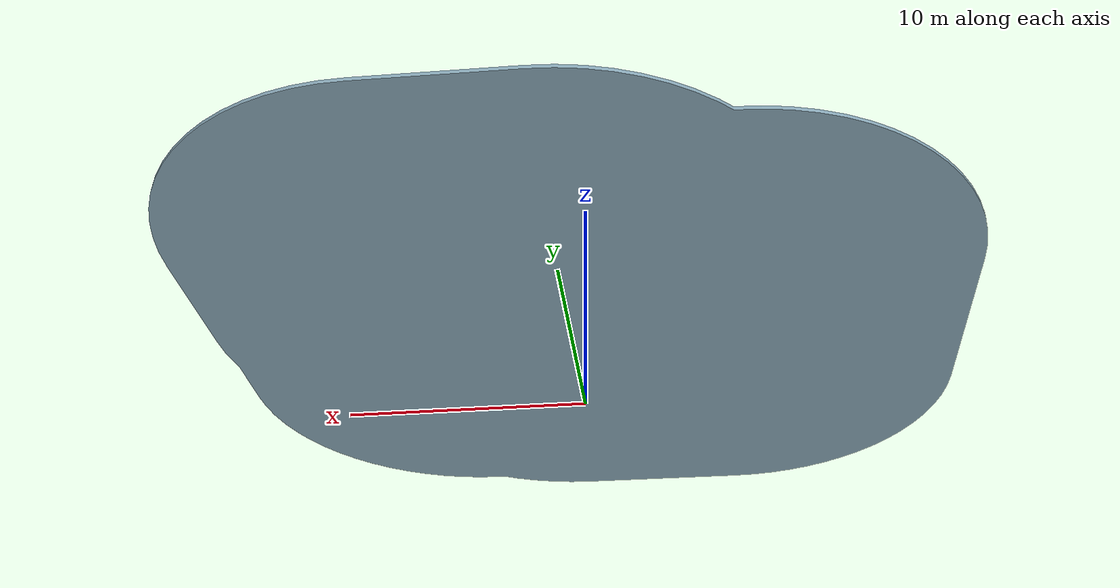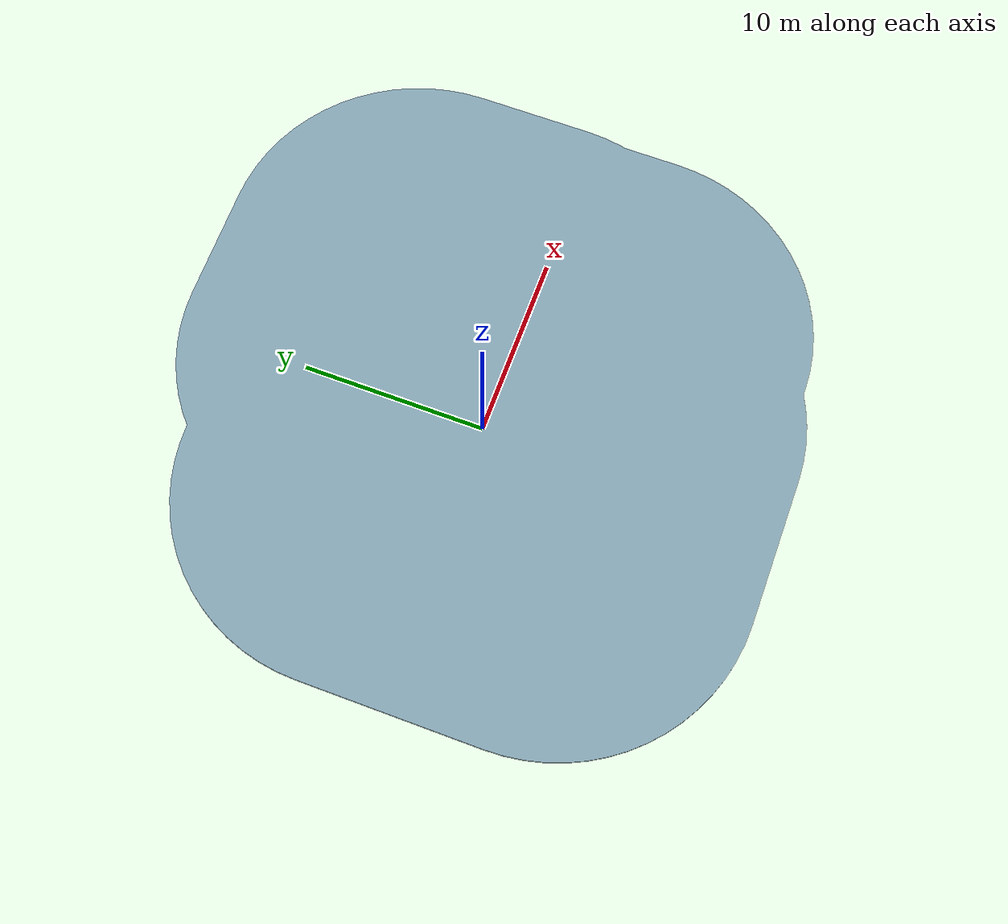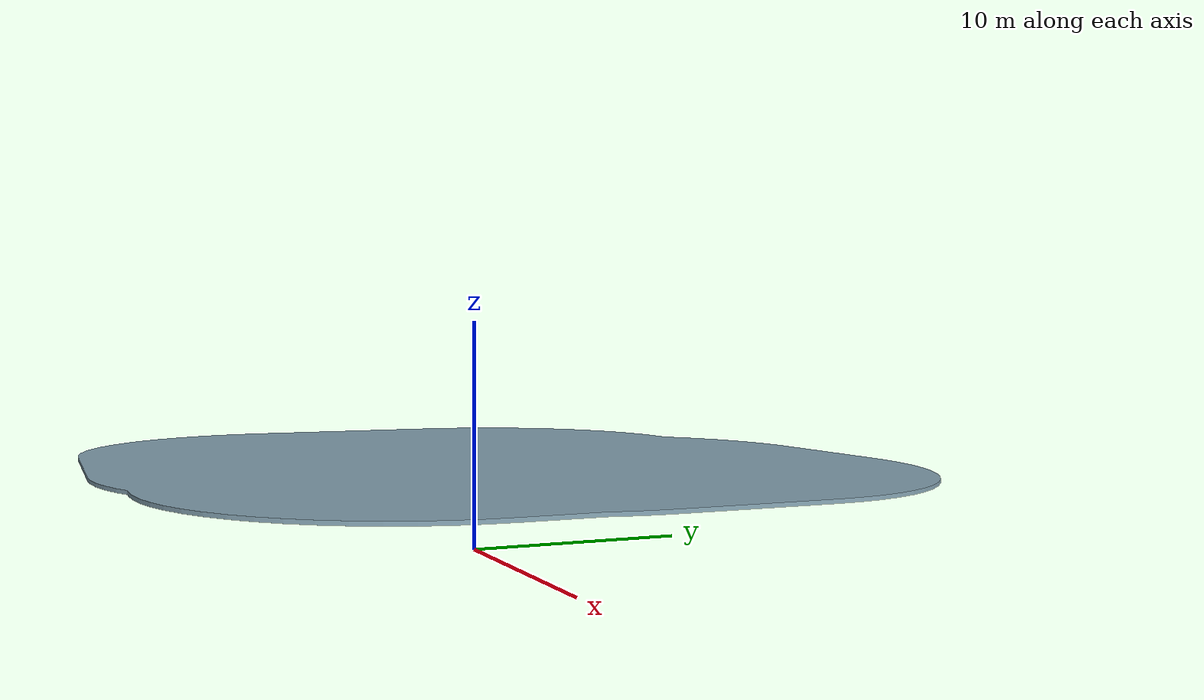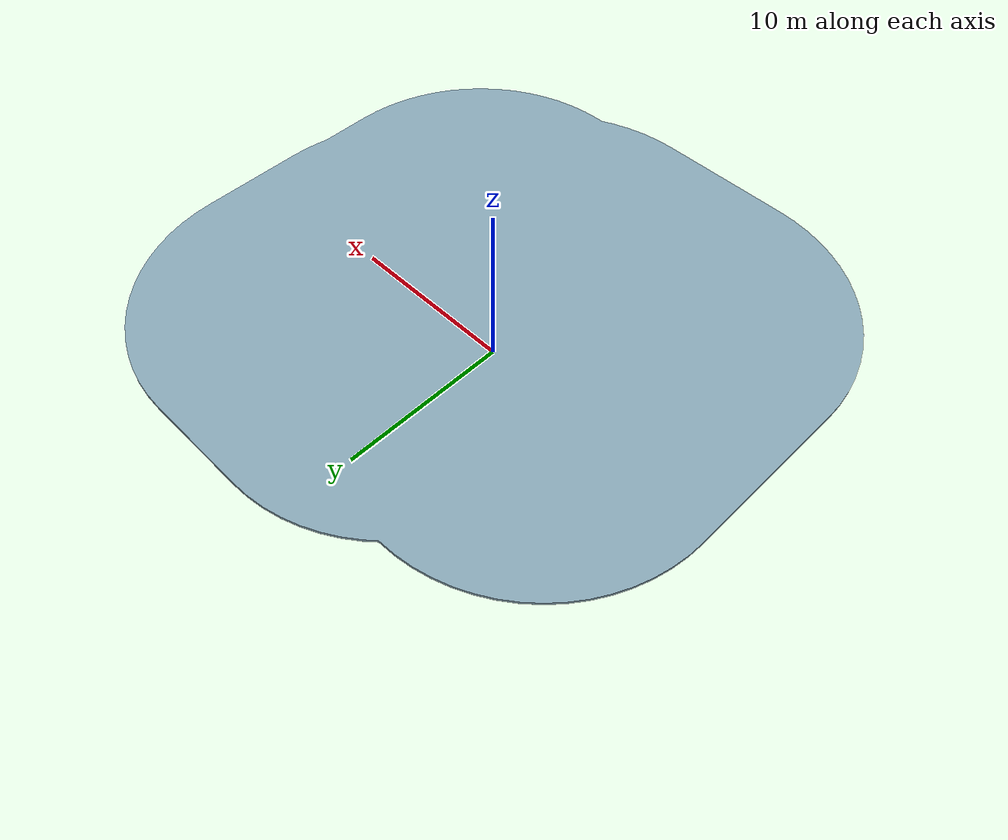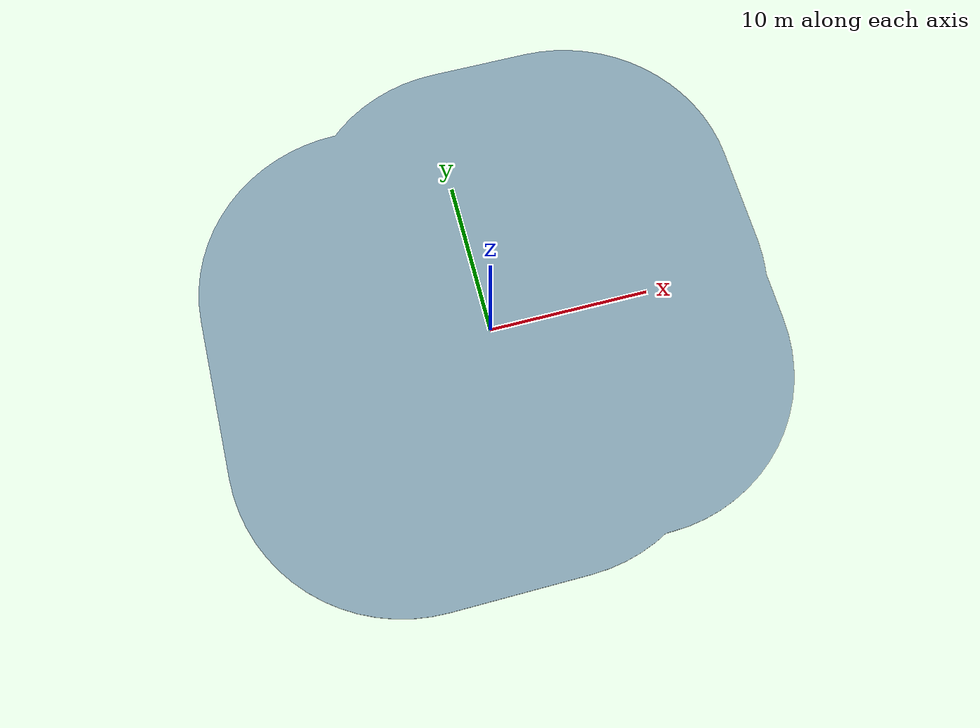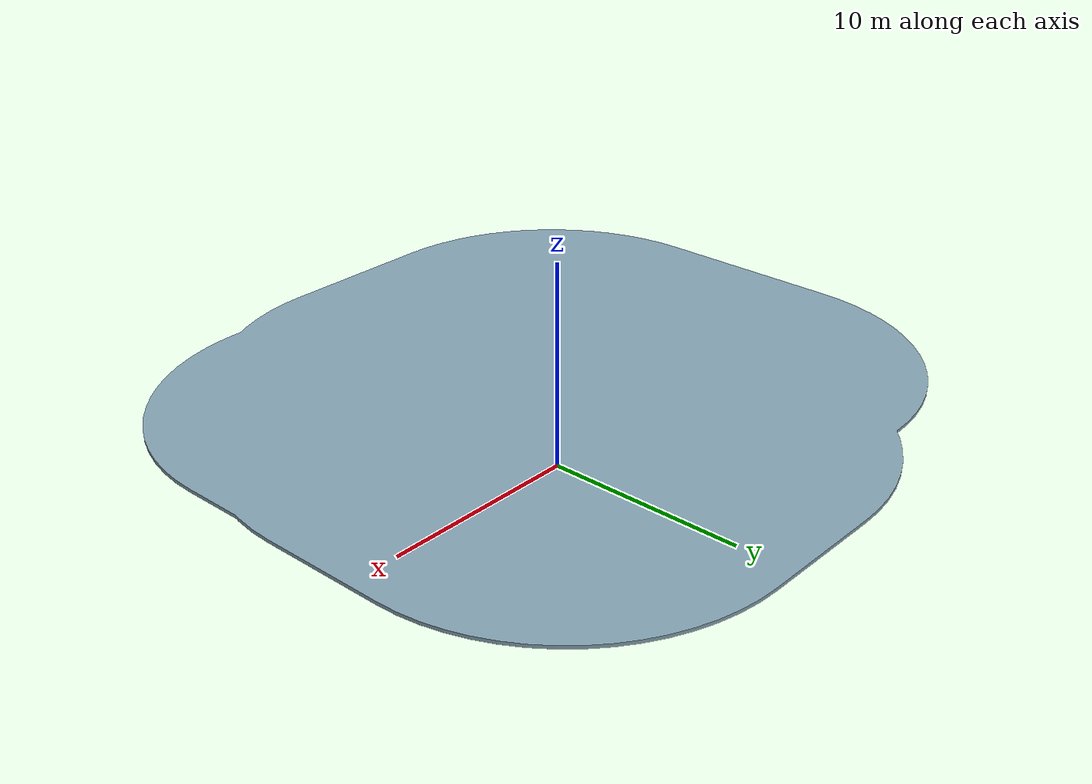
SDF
<?xml version="1.0" ?>
<sdf version="1.6">
  <model name="ceiling_5">
    <pose frame="">0 0 4 0 -0 0</pose>
    <static>1</static>
    <self_collide>0</self_collide>
    <allow_auto_disable>0</allow_auto_disable>
    <link name="mesh">
      <kinematic>0</kinematic>
      <gravity>1</gravity>
      <self_collide>0</self_collide>
      <collision name="collision">
        <geometry>
          <mesh>
            <uri>model://ceiling_5/meshes/sSuWgHZocb.stl</uri>
            <scale>1 1 1</scale>
          </mesh>
        </geometry>
        <pose frame="">-5.84954 -4.19737 -0.075 0 -0 0</pose>
        <max_contacts>20</max_contacts>
      </collision>
      <visual name="visual">
        <geometry>
          <mesh>
            <uri>model://ceiling_5/meshes/jaIVolwkoY.stl</uri>
            <scale>1 1 1</scale>
          </mesh>
        </geometry>
        <material>
          <ambient>0.521569 0.639216 0.698039 1</ambient>
          <diffuse>0.5215686274509804 0.6392156862745098 0.6980392156862745 1</diffuse>
        </material>
        <pose frame="">-5.84954 -4.19737 -0.075 0 -0 0</pose>
        <cast_shadows>1</cast_shadows>
        <transparency>0.0</transparency>
      </visual>
      <pose frame="">0 0 0 0 -0 0</pose>
    </link>
  </model>
</sdf>
